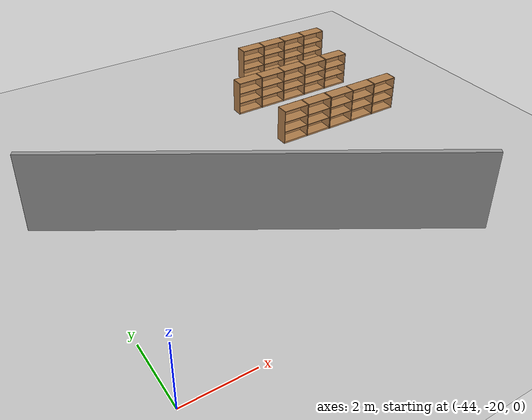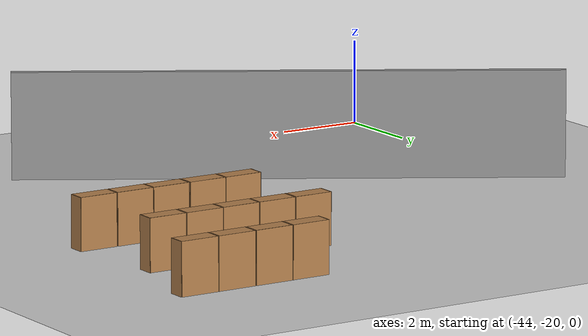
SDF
<sdf version="1.6">
 <world name="default">
  <model name="ground_plane">
   <static>1</static>
   <link name="link">
    <collision name="collision">
     <geometry><plane><normal>0 0 1</normal><size>100 100</size></plane></geometry>
     <surface><friction><ode><mu>100</mu><mu2>50</mu2></ode></friction></surface>
    </collision>
    <visual name="visual">
     <cast_shadows>0</cast_shadows>
     <geometry><plane><normal>0 0 1</normal><size>100 100</size></plane></geometry>
     <material>
      <script><uri>file://media/materials/scripts/gazebo.material</uri><name>Gazebo/Grey</name></script>
     </material>
    </visual>
   </link>
  </model>
  <model name="mall_new_reduce_size">
   <pose>-6.8092 7.5529 0 0 -0 0</pose>
   <link name="Wall_314">
    <collision name="Wall_314_Collision">
     <geometry><box><size>12.6291 0.15 2.5</size></box></geometry>
     <pose>0 0 1.25 0 -0 0</pose>
    </collision>
    <visual name="Wall_314_Visual">
     <pose>0 0 1.25 0 -0 0</pose>
     <geometry><box><size>12.6291 0.15 2.5</size></box></geometry>
     <material>
      <script><uri>file://media/materials/scripts/gazebo.material</uri><name>Gazebo/Grey</name></script>
      <ambient>1 1 1 1</ambient>
     </material>
     <meta><layer>0</layer></meta>
    </visual>
    <pose>-32.6669 -23.463 0 0 -0 2.5911</pose>
   </link>
   <static>1</static>
  </model>
  <model name="bookshelf">
   <static>1</static>
   <link name="link">
    <inertial><mass>1</mass></inertial>
    <collision name="back">
     <pose>0 0.005 0.6 0 -0 0</pose>
     <geometry><box><size>0.9 0.01 1.2</size></box></geometry>
    </collision>
    <visual name="visual1">
     <pose>0 0.005 0.6 0 -0 0</pose>
     <geometry><box><size>0.9 0.01 1.2</size></box></geometry>
     <material>
      <script><uri>file://media/materials/scripts/gazebo.material</uri><name>Gazebo/Wood</name></script>
     </material>
    </visual>
    <collision name="left_side">
     <pose>0.45 -0.195 0.6 0 -0 0</pose>
     <geometry><box><size>0.02 0.4 1.2</size></box></geometry>
    </collision>
    <visual name="visual2">
     <pose>0.45 -0.195 0.6 0 -0 0</pose>
     <geometry><box><size>0.02 0.4 1.2</size></box></geometry>
     <material>
      <script><uri>file://media/materials/scripts/gazebo.material</uri><name>Gazebo/Wood</name></script>
     </material>
    </visual>
    <collision name="right_side">
     <pose>-0.45 -0.195 0.6 0 -0 0</pose>
     <geometry><box><size>0.02 0.4 1.2</size></box></geometry>
    </collision>
    <visual name="visual3">
     <pose>-0.45 -0.195 0.6 0 -0 0</pose>
     <geometry><box><size>0.02 0.4 1.2</size></box></geometry>
     <material>
      <script><uri>file://media/materials/scripts/gazebo.material</uri><name>Gazebo/Wood</name></script>
     </material>
    </visual>
    <collision name="bottom">
     <pose>0 -0.195 0.03 0 -0 0</pose>
     <geometry><box><size>0.88 0.4 0.06</size></box></geometry>
    </collision>
    <visual name="visual4">
     <pose>0 -0.195 0.03 0 -0 0</pose>
     <geometry><box><size>0.88 0.4 0.06</size></box></geometry>
     <material>
      <script><uri>file://media/materials/scripts/gazebo.material</uri><name>Gazebo/Wood</name></script>
     </material>
    </visual>
    <collision name="top">
     <pose>0 -0.195 1.19 0 -0 0</pose>
     <geometry><box><size>0.88 0.4 0.02</size></box></geometry>
    </collision>
    <visual name="visual5">
     <pose>0 -0.195 1.19 0 -0 0</pose>
     <geometry><box><size>0.88 0.4 0.02</size></box></geometry>
     <material>
      <script><uri>file://media/materials/scripts/gazebo.material</uri><name>Gazebo/Wood</name></script>
     </material>
    </visual>
    <collision name="low_shelf">
     <pose>0 -0.195 0.43 0 -0 0</pose>
     <geometry><box><size>0.88 0.4 0.02</size></box></geometry>
    </collision>
    <visual name="visual6">
     <pose>0 -0.195 0.43 0 -0 0</pose>
     <geometry><box><size>0.88 0.4 0.02</size></box></geometry>
     <material>
      <script><uri>file://media/materials/scripts/gazebo.material</uri><name>Gazebo/Wood</name></script>
     </material>
    </visual>
    <collision name="high_shelf">
     <pose>0 -0.195 0.8 0 -0 0</pose>
     <geometry><box><size>0.88 0.4 0.02</size></box></geometry>
    </collision>
    <visual name="visual7">
     <pose>0 -0.195 0.8 0 -0 0</pose>
     <geometry><box><size>0.88 0.4 0.02</size></box></geometry>
     <material>
      <script><uri>file://media/materials/scripts/gazebo.material</uri><name>Gazebo/Wood</name></script>
     </material>
    </visual>
   </link>
   <pose>-33.7996 -7.69307 0 0 -0 0</pose>
  </model>
  <model name="bookshelf_0">
   <static>1</static>
   <link name="link">
    <inertial><mass>1</mass></inertial>
    <collision name="back">
     <pose>0 0.005 0.6 0 -0 0</pose>
     <geometry><box><size>0.9 0.01 1.2</size></box></geometry>
    </collision>
    <visual name="visual1">
     <pose>0 0.005 0.6 0 -0 0</pose>
     <geometry><box><size>0.9 0.01 1.2</size></box></geometry>
     <material>
      <script><uri>file://media/materials/scripts/gazebo.material</uri><name>Gazebo/Wood</name></script>
     </material>
    </visual>
    <collision name="left_side">
     <pose>0.45 -0.195 0.6 0 -0 0</pose>
     <geometry><box><size>0.02 0.4 1.2</size></box></geometry>
    </collision>
    <visual name="visual2">
     <pose>0.45 -0.195 0.6 0 -0 0</pose>
     <geometry><box><size>0.02 0.4 1.2</size></box></geometry>
     <material>
      <script><uri>file://media/materials/scripts/gazebo.material</uri><name>Gazebo/Wood</name></script>
     </material>
    </visual>
    <collision name="right_side">
     <pose>-0.45 -0.195 0.6 0 -0 0</pose>
     <geometry><box><size>0.02 0.4 1.2</size></box></geometry>
    </collision>
    <visual name="visual3">
     <pose>-0.45 -0.195 0.6 0 -0 0</pose>
     <geometry><box><size>0.02 0.4 1.2</size></box></geometry>
     <material>
      <script><uri>file://media/materials/scripts/gazebo.material</uri><name>Gazebo/Wood</name></script>
     </material>
    </visual>
    <collision name="bottom">
     <pose>0 -0.195 0.03 0 -0 0</pose>
     <geometry><box><size>0.88 0.4 0.06</size></box></geometry>
    </collision>
    <visual name="visual4">
     <pose>0 -0.195 0.03 0 -0 0</pose>
     <geometry><box><size>0.88 0.4 0.06</size></box></geometry>
     <material>
      <script><uri>file://media/materials/scripts/gazebo.material</uri><name>Gazebo/Wood</name></script>
     </material>
    </visual>
    <collision name="top">
     <pose>0 -0.195 1.19 0 -0 0</pose>
     <geometry><box><size>0.88 0.4 0.02</size></box></geometry>
    </collision>
    <visual name="visual5">
     <pose>0 -0.195 1.19 0 -0 0</pose>
     <geometry><box><size>0.88 0.4 0.02</size></box></geometry>
     <material>
      <script><uri>file://media/materials/scripts/gazebo.material</uri><name>Gazebo/Wood</name></script>
     </material>
    </visual>
    <collision name="low_shelf">
     <pose>0 -0.195 0.43 0 -0 0</pose>
     <geometry><box><size>0.88 0.4 0.02</size></box></geometry>
    </collision>
    <visual name="visual6">
     <pose>0 -0.195 0.43 0 -0 0</pose>
     <geometry><box><size>0.88 0.4 0.02</size></box></geometry>
     <material>
      <script><uri>file://media/materials/scripts/gazebo.material</uri><name>Gazebo/Wood</name></script>
     </material>
    </visual>
    <collision name="high_shelf">
     <pose>0 -0.195 0.8 0 -0 0</pose>
     <geometry><box><size>0.88 0.4 0.02</size></box></geometry>
    </collision>
    <visual name="visual7">
     <pose>0 -0.195 0.8 0 -0 0</pose>
     <geometry><box><size>0.88 0.4 0.02</size></box></geometry>
     <material>
      <script><uri>file://media/materials/scripts/gazebo.material</uri><name>Gazebo/Wood</name></script>
     </material>
    </visual>
   </link>
   <pose>-34.3594 -9.86811 0 0 -0 0</pose>
  </model>
  <model name="bookshelf_1">
   <static>1</static>
   <link name="link">
    <inertial><mass>1</mass></inertial>
    <collision name="back">
     <pose>0 0.005 0.6 0 -0 0</pose>
     <geometry><box><size>0.9 0.01 1.2</size></box></geometry>
    </collision>
    <visual name="visual1">
     <pose>0 0.005 0.6 0 -0 0</pose>
     <geometry><box><size>0.9 0.01 1.2</size></box></geometry>
     <material>
      <script><uri>file://media/materials/scripts/gazebo.material</uri><name>Gazebo/Wood</name></script>
     </material>
    </visual>
    <collision name="left_side">
     <pose>0.45 -0.195 0.6 0 -0 0</pose>
     <geometry><box><size>0.02 0.4 1.2</size></box></geometry>
    </collision>
    <visual name="visual2">
     <pose>0.45 -0.195 0.6 0 -0 0</pose>
     <geometry><box><size>0.02 0.4 1.2</size></box></geometry>
     <material>
      <script><uri>file://media/materials/scripts/gazebo.material</uri><name>Gazebo/Wood</name></script>
     </material>
    </visual>
    <collision name="right_side">
     <pose>-0.45 -0.195 0.6 0 -0 0</pose>
     <geometry><box><size>0.02 0.4 1.2</size></box></geometry>
    </collision>
    <visual name="visual3">
     <pose>-0.45 -0.195 0.6 0 -0 0</pose>
     <geometry><box><size>0.02 0.4 1.2</size></box></geometry>
     <material>
      <script><uri>file://media/materials/scripts/gazebo.material</uri><name>Gazebo/Wood</name></script>
     </material>
    </visual>
    <collision name="bottom">
     <pose>0 -0.195 0.03 0 -0 0</pose>
     <geometry><box><size>0.88 0.4 0.06</size></box></geometry>
    </collision>
    <visual name="visual4">
     <pose>0 -0.195 0.03 0 -0 0</pose>
     <geometry><box><size>0.88 0.4 0.06</size></box></geometry>
     <material>
      <script><uri>file://media/materials/scripts/gazebo.material</uri><name>Gazebo/Wood</name></script>
     </material>
    </visual>
    <collision name="top">
     <pose>0 -0.195 1.19 0 -0 0</pose>
     <geometry><box><size>0.88 0.4 0.02</size></box></geometry>
    </collision>
    <visual name="visual5">
     <pose>0 -0.195 1.19 0 -0 0</pose>
     <geometry><box><size>0.88 0.4 0.02</size></box></geometry>
     <material>
      <script><uri>file://media/materials/scripts/gazebo.material</uri><name>Gazebo/Wood</name></script>
     </material>
    </visual>
    <collision name="low_shelf">
     <pose>0 -0.195 0.43 0 -0 0</pose>
     <geometry><box><size>0.88 0.4 0.02</size></box></geometry>
    </collision>
    <visual name="visual6">
     <pose>0 -0.195 0.43 0 -0 0</pose>
     <geometry><box><size>0.88 0.4 0.02</size></box></geometry>
     <material>
      <script><uri>file://media/materials/scripts/gazebo.material</uri><name>Gazebo/Wood</name></script>
     </material>
    </visual>
    <collision name="high_shelf">
     <pose>0 -0.195 0.8 0 -0 0</pose>
     <geometry><box><size>0.88 0.4 0.02</size></box></geometry>
    </collision>
    <visual name="visual7">
     <pose>0 -0.195 0.8 0 -0 0</pose>
     <geometry><box><size>0.88 0.4 0.02</size></box></geometry>
     <material>
      <script><uri>file://media/materials/scripts/gazebo.material</uri><name>Gazebo/Wood</name></script>
     </material>
    </visual>
   </link>
   <pose>-31.9528 -7.69334 0 0 -0 0</pose>
  </model>
  <model name="bookshelf_3">
   <static>1</static>
   <link name="link">
    <inertial><mass>1</mass></inertial>
    <collision name="back">
     <pose>0 0.005 0.6 0 -0 0</pose>
     <geometry><box><size>0.9 0.01 1.2</size></box></geometry>
    </collision>
    <visual name="visual1">
     <pose>0 0.005 0.6 0 -0 0</pose>
     <geometry><box><size>0.9 0.01 1.2</size></box></geometry>
     <material>
      <script><uri>file://media/materials/scripts/gazebo.material</uri><name>Gazebo/Wood</name></script>
     </material>
    </visual>
    <collision name="left_side">
     <pose>0.45 -0.195 0.6 0 -0 0</pose>
     <geometry><box><size>0.02 0.4 1.2</size></box></geometry>
    </collision>
    <visual name="visual2">
     <pose>0.45 -0.195 0.6 0 -0 0</pose>
     <geometry><box><size>0.02 0.4 1.2</size></box></geometry>
     <material>
      <script><uri>file://media/materials/scripts/gazebo.material</uri><name>Gazebo/Wood</name></script>
     </material>
    </visual>
    <collision name="right_side">
     <pose>-0.45 -0.195 0.6 0 -0 0</pose>
     <geometry><box><size>0.02 0.4 1.2</size></box></geometry>
    </collision>
    <visual name="visual3">
     <pose>-0.45 -0.195 0.6 0 -0 0</pose>
     <geometry><box><size>0.02 0.4 1.2</size></box></geometry>
     <material>
      <script><uri>file://media/materials/scripts/gazebo.material</uri><name>Gazebo/Wood</name></script>
     </material>
    </visual>
    <collision name="bottom">
     <pose>0 -0.195 0.03 0 -0 0</pose>
     <geometry><box><size>0.88 0.4 0.06</size></box></geometry>
    </collision>
    <visual name="visual4">
     <pose>0 -0.195 0.03 0 -0 0</pose>
     <geometry><box><size>0.88 0.4 0.06</size></box></geometry>
     <material>
      <script><uri>file://media/materials/scripts/gazebo.material</uri><name>Gazebo/Wood</name></script>
     </material>
    </visual>
    <collision name="top">
     <pose>0 -0.195 1.19 0 -0 0</pose>
     <geometry><box><size>0.88 0.4 0.02</size></box></geometry>
    </collision>
    <visual name="visual5">
     <pose>0 -0.195 1.19 0 -0 0</pose>
     <geometry><box><size>0.88 0.4 0.02</size></box></geometry>
     <material>
      <script><uri>file://media/materials/scripts/gazebo.material</uri><name>Gazebo/Wood</name></script>
     </material>
    </visual>
    <collision name="low_shelf">
     <pose>0 -0.195 0.43 0 -0 0</pose>
     <geometry><box><size>0.88 0.4 0.02</size></box></geometry>
    </collision>
    <visual name="visual6">
     <pose>0 -0.195 0.43 0 -0 0</pose>
     <geometry><box><size>0.88 0.4 0.02</size></box></geometry>
     <material>
      <script><uri>file://media/materials/scripts/gazebo.material</uri><name>Gazebo/Wood</name></script>
     </material>
    </visual>
    <collision name="high_shelf">
     <pose>0 -0.195 0.8 0 -0 0</pose>
     <geometry><box><size>0.88 0.4 0.02</size></box></geometry>
    </collision>
    <visual name="visual7">
     <pose>0 -0.195 0.8 0 -0 0</pose>
     <geometry><box><size>0.88 0.4 0.02</size></box></geometry>
     <material>
      <script><uri>file://media/materials/scripts/gazebo.material</uri><name>Gazebo/Wood</name></script>
     </material>
    </visual>
   </link>
   <pose>-33.4363 -9.8649 0 0 -0 0</pose>
  </model>
  <model name="bookshelf_4">
   <static>1</static>
   <link name="link">
    <inertial><mass>1</mass></inertial>
    <collision name="back">
     <pose>0 0.005 0.6 0 -0 0</pose>
     <geometry><box><size>0.9 0.01 1.2</size></box></geometry>
    </collision>
    <visual name="visual1">
     <pose>0 0.005 0.6 0 -0 0</pose>
     <geometry><box><size>0.9 0.01 1.2</size></box></geometry>
     <material>
      <script><uri>file://media/materials/scripts/gazebo.material</uri><name>Gazebo/Wood</name></script>
     </material>
    </visual>
    <collision name="left_side">
     <pose>0.45 -0.195 0.6 0 -0 0</pose>
     <geometry><box><size>0.02 0.4 1.2</size></box></geometry>
    </collision>
    <visual name="visual2">
     <pose>0.45 -0.195 0.6 0 -0 0</pose>
     <geometry><box><size>0.02 0.4 1.2</size></box></geometry>
     <material>
      <script><uri>file://media/materials/scripts/gazebo.material</uri><name>Gazebo/Wood</name></script>
     </material>
    </visual>
    <collision name="right_side">
     <pose>-0.45 -0.195 0.6 0 -0 0</pose>
     <geometry><box><size>0.02 0.4 1.2</size></box></geometry>
    </collision>
    <visual name="visual3">
     <pose>-0.45 -0.195 0.6 0 -0 0</pose>
     <geometry><box><size>0.02 0.4 1.2</size></box></geometry>
     <material>
      <script><uri>file://media/materials/scripts/gazebo.material</uri><name>Gazebo/Wood</name></script>
     </material>
    </visual>
    <collision name="bottom">
     <pose>0 -0.195 0.03 0 -0 0</pose>
     <geometry><box><size>0.88 0.4 0.06</size></box></geometry>
    </collision>
    <visual name="visual4">
     <pose>0 -0.195 0.03 0 -0 0</pose>
     <geometry><box><size>0.88 0.4 0.06</size></box></geometry>
     <material>
      <script><uri>file://media/materials/scripts/gazebo.material</uri><name>Gazebo/Wood</name></script>
     </material>
    </visual>
    <collision name="top">
     <pose>0 -0.195 1.19 0 -0 0</pose>
     <geometry><box><size>0.88 0.4 0.02</size></box></geometry>
    </collision>
    <visual name="visual5">
     <pose>0 -0.195 1.19 0 -0 0</pose>
     <geometry><box><size>0.88 0.4 0.02</size></box></geometry>
     <material>
      <script><uri>file://media/materials/scripts/gazebo.material</uri><name>Gazebo/Wood</name></script>
     </material>
    </visual>
    <collision name="low_shelf">
     <pose>0 -0.195 0.43 0 -0 0</pose>
     <geometry><box><size>0.88 0.4 0.02</size></box></geometry>
    </collision>
    <visual name="visual6">
     <pose>0 -0.195 0.43 0 -0 0</pose>
     <geometry><box><size>0.88 0.4 0.02</size></box></geometry>
     <material>
      <script><uri>file://media/materials/scripts/gazebo.material</uri><name>Gazebo/Wood</name></script>
     </material>
    </visual>
    <collision name="high_shelf">
     <pose>0 -0.195 0.8 0 -0 0</pose>
     <geometry><box><size>0.88 0.4 0.02</size></box></geometry>
    </collision>
    <visual name="visual7">
     <pose>0 -0.195 0.8 0 -0 0</pose>
     <geometry><box><size>0.88 0.4 0.02</size></box></geometry>
     <material>
      <script><uri>file://media/materials/scripts/gazebo.material</uri><name>Gazebo/Wood</name></script>
     </material>
    </visual>
   </link>
   <pose>-32.5123 -9.8649 0 0 -0 0</pose>
  </model>
  <model name="bookshelf_5">
   <static>1</static>
   <link name="link">
    <inertial><mass>1</mass></inertial>
    <collision name="back">
     <pose>0 0.005 0.6 0 -0 0</pose>
     <geometry><box><size>0.9 0.01 1.2</size></box></geometry>
    </collision>
    <visual name="visual1">
     <pose>0 0.005 0.6 0 -0 0</pose>
     <geometry><box><size>0.9 0.01 1.2</size></box></geometry>
     <material>
      <script><uri>file://media/materials/scripts/gazebo.material</uri><name>Gazebo/Wood</name></script>
     </material>
    </visual>
    <collision name="left_side">
     <pose>0.45 -0.195 0.6 0 -0 0</pose>
     <geometry><box><size>0.02 0.4 1.2</size></box></geometry>
    </collision>
    <visual name="visual2">
     <pose>0.45 -0.195 0.6 0 -0 0</pose>
     <geometry><box><size>0.02 0.4 1.2</size></box></geometry>
     <material>
      <script><uri>file://media/materials/scripts/gazebo.material</uri><name>Gazebo/Wood</name></script>
     </material>
    </visual>
    <collision name="right_side">
     <pose>-0.45 -0.195 0.6 0 -0 0</pose>
     <geometry><box><size>0.02 0.4 1.2</size></box></geometry>
    </collision>
    <visual name="visual3">
     <pose>-0.45 -0.195 0.6 0 -0 0</pose>
     <geometry><box><size>0.02 0.4 1.2</size></box></geometry>
     <material>
      <script><uri>file://media/materials/scripts/gazebo.material</uri><name>Gazebo/Wood</name></script>
     </material>
    </visual>
    <collision name="bottom">
     <pose>0 -0.195 0.03 0 -0 0</pose>
     <geometry><box><size>0.88 0.4 0.06</size></box></geometry>
    </collision>
    <visual name="visual4">
     <pose>0 -0.195 0.03 0 -0 0</pose>
     <geometry><box><size>0.88 0.4 0.06</size></box></geometry>
     <material>
      <script><uri>file://media/materials/scripts/gazebo.material</uri><name>Gazebo/Wood</name></script>
     </material>
    </visual>
    <collision name="top">
     <pose>0 -0.195 1.19 0 -0 0</pose>
     <geometry><box><size>0.88 0.4 0.02</size></box></geometry>
    </collision>
    <visual name="visual5">
     <pose>0 -0.195 1.19 0 -0 0</pose>
     <geometry><box><size>0.88 0.4 0.02</size></box></geometry>
     <material>
      <script><uri>file://media/materials/scripts/gazebo.material</uri><name>Gazebo/Wood</name></script>
     </material>
    </visual>
    <collision name="low_shelf">
     <pose>0 -0.195 0.43 0 -0 0</pose>
     <geometry><box><size>0.88 0.4 0.02</size></box></geometry>
    </collision>
    <visual name="visual6">
     <pose>0 -0.195 0.43 0 -0 0</pose>
     <geometry><box><size>0.88 0.4 0.02</size></box></geometry>
     <material>
      <script><uri>file://media/materials/scripts/gazebo.material</uri><name>Gazebo/Wood</name></script>
     </material>
    </visual>
    <collision name="high_shelf">
     <pose>0 -0.195 0.8 0 -0 0</pose>
     <geometry><box><size>0.88 0.4 0.02</size></box></geometry>
    </collision>
    <visual name="visual7">
     <pose>0 -0.195 0.8 0 -0 0</pose>
     <geometry><box><size>0.88 0.4 0.02</size></box></geometry>
     <material>
      <script><uri>file://media/materials/scripts/gazebo.material</uri><name>Gazebo/Wood</name></script>
     </material>
    </visual>
   </link>
   <pose>-35.2792 -9.86761 0 0 -0 0</pose>
  </model>
  <model name="bookshelf_12">
   <static>1</static>
   <link name="link">
    <inertial><mass>1</mass></inertial>
    <collision name="back">
     <pose>0 0.005 0.6 0 -0 0</pose>
     <geometry><box><size>0.9 0.01 1.2</size></box></geometry>
    </collision>
    <visual name="visual1">
     <pose>0 0.005 0.6 0 -0 0</pose>
     <geometry><box><size>0.9 0.01 1.2</size></box></geometry>
     <material>
      <script><uri>file://media/materials/scripts/gazebo.material</uri><name>Gazebo/Wood</name></script>
     </material>
    </visual>
    <collision name="left_side">
     <pose>0.45 -0.195 0.6 0 -0 0</pose>
     <geometry><box><size>0.02 0.4 1.2</size></box></geometry>
    </collision>
    <visual name="visual2">
     <pose>0.45 -0.195 0.6 0 -0 0</pose>
     <geometry><box><size>0.02 0.4 1.2</size></box></geometry>
     <material>
      <script><uri>file://media/materials/scripts/gazebo.material</uri><name>Gazebo/Wood</name></script>
     </material>
    </visual>
    <collision name="right_side">
     <pose>-0.45 -0.195 0.6 0 -0 0</pose>
     <geometry><box><size>0.02 0.4 1.2</size></box></geometry>
    </collision>
    <visual name="visual3">
     <pose>-0.45 -0.195 0.6 0 -0 0</pose>
     <geometry><box><size>0.02 0.4 1.2</size></box></geometry>
     <material>
      <script><uri>file://media/materials/scripts/gazebo.material</uri><name>Gazebo/Wood</name></script>
     </material>
    </visual>
    <collision name="bottom">
     <pose>0 -0.195 0.03 0 -0 0</pose>
     <geometry><box><size>0.88 0.4 0.06</size></box></geometry>
    </collision>
    <visual name="visual4">
     <pose>0 -0.195 0.03 0 -0 0</pose>
     <geometry><box><size>0.88 0.4 0.06</size></box></geometry>
     <material>
      <script><uri>file://media/materials/scripts/gazebo.material</uri><name>Gazebo/Wood</name></script>
     </material>
    </visual>
    <collision name="top">
     <pose>0 -0.195 1.19 0 -0 0</pose>
     <geometry><box><size>0.88 0.4 0.02</size></box></geometry>
    </collision>
    <visual name="visual5">
     <pose>0 -0.195 1.19 0 -0 0</pose>
     <geometry><box><size>0.88 0.4 0.02</size></box></geometry>
     <material>
      <script><uri>file://media/materials/scripts/gazebo.material</uri><name>Gazebo/Wood</name></script>
     </material>
    </visual>
    <collision name="low_shelf">
     <pose>0 -0.195 0.43 0 -0 0</pose>
     <geometry><box><size>0.88 0.4 0.02</size></box></geometry>
    </collision>
    <visual name="visual6">
     <pose>0 -0.195 0.43 0 -0 0</pose>
     <geometry><box><size>0.88 0.4 0.02</size></box></geometry>
     <material>
      <script><uri>file://media/materials/scripts/gazebo.material</uri><name>Gazebo/Wood</name></script>
     </material>
    </visual>
    <collision name="high_shelf">
     <pose>0 -0.195 0.8 0 -0 0</pose>
     <geometry><box><size>0.88 0.4 0.02</size></box></geometry>
    </collision>
    <visual name="visual7">
     <pose>0 -0.195 0.8 0 -0 0</pose>
     <geometry><box><size>0.88 0.4 0.02</size></box></geometry>
     <material>
      <script><uri>file://media/materials/scripts/gazebo.material</uri><name>Gazebo/Wood</name></script>
     </material>
    </visual>
   </link>
   <pose>-34.7239 -7.69355 0 0 -0 0</pose>
  </model>
  <model name="bookshelf_13">
   <static>1</static>
   <link name="link">
    <inertial><mass>1</mass></inertial>
    <collision name="back">
     <pose>0 0.005 0.6 0 -0 0</pose>
     <geometry><box><size>0.9 0.01 1.2</size></box></geometry>
    </collision>
    <visual name="visual1">
     <pose>0 0.005 0.6 0 -0 0</pose>
     <geometry><box><size>0.9 0.01 1.2</size></box></geometry>
     <material>
      <script><uri>file://media/materials/scripts/gazebo.material</uri><name>Gazebo/Wood</name></script>
     </material>
    </visual>
    <collision name="left_side">
     <pose>0.45 -0.195 0.6 0 -0 0</pose>
     <geometry><box><size>0.02 0.4 1.2</size></box></geometry>
    </collision>
    <visual name="visual2">
     <pose>0.45 -0.195 0.6 0 -0 0</pose>
     <geometry><box><size>0.02 0.4 1.2</size></box></geometry>
     <material>
      <script><uri>file://media/materials/scripts/gazebo.material</uri><name>Gazebo/Wood</name></script>
     </material>
    </visual>
    <collision name="right_side">
     <pose>-0.45 -0.195 0.6 0 -0 0</pose>
     <geometry><box><size>0.02 0.4 1.2</size></box></geometry>
    </collision>
    <visual name="visual3">
     <pose>-0.45 -0.195 0.6 0 -0 0</pose>
     <geometry><box><size>0.02 0.4 1.2</size></box></geometry>
     <material>
      <script><uri>file://media/materials/scripts/gazebo.material</uri><name>Gazebo/Wood</name></script>
     </material>
    </visual>
    <collision name="bottom">
     <pose>0 -0.195 0.03 0 -0 0</pose>
     <geometry><box><size>0.88 0.4 0.06</size></box></geometry>
    </collision>
    <visual name="visual4">
     <pose>0 -0.195 0.03 0 -0 0</pose>
     <geometry><box><size>0.88 0.4 0.06</size></box></geometry>
     <material>
      <script><uri>file://media/materials/scripts/gazebo.material</uri><name>Gazebo/Wood</name></script>
     </material>
    </visual>
    <collision name="top">
     <pose>0 -0.195 1.19 0 -0 0</pose>
     <geometry><box><size>0.88 0.4 0.02</size></box></geometry>
    </collision>
    <visual name="visual5">
     <pose>0 -0.195 1.19 0 -0 0</pose>
     <geometry><box><size>0.88 0.4 0.02</size></box></geometry>
     <material>
      <script><uri>file://media/materials/scripts/gazebo.material</uri><name>Gazebo/Wood</name></script>
     </material>
    </visual>
    <collision name="low_shelf">
     <pose>0 -0.195 0.43 0 -0 0</pose>
     <geometry><box><size>0.88 0.4 0.02</size></box></geometry>
    </collision>
    <visual name="visual6">
     <pose>0 -0.195 0.43 0 -0 0</pose>
     <geometry><box><size>0.88 0.4 0.02</size></box></geometry>
     <material>
      <script><uri>file://media/materials/scripts/gazebo.material</uri><name>Gazebo/Wood</name></script>
     </material>
    </visual>
    <collision name="high_shelf">
     <pose>0 -0.195 0.8 0 -0 0</pose>
     <geometry><box><size>0.88 0.4 0.02</size></box></geometry>
    </collision>
    <visual name="visual7">
     <pose>0 -0.195 0.8 0 -0 0</pose>
     <geometry><box><size>0.88 0.4 0.02</size></box></geometry>
     <material>
      <script><uri>file://media/materials/scripts/gazebo.material</uri><name>Gazebo/Wood</name></script>
     </material>
    </visual>
   </link>
   <pose>-32.8758 -7.69413 0 0 -0 0</pose>
  </model>
  <model name="bookshelf_29">
   <static>1</static>
   <link name="link">
    <inertial><mass>1</mass></inertial>
    <collision name="back">
     <pose>0 0.005 0.6 0 -0 0</pose>
     <geometry><box><size>0.9 0.01 1.2</size></box></geometry>
    </collision>
    <visual name="visual1">
     <pose>0 0.005 0.6 0 -0 0</pose>
     <geometry><box><size>0.9 0.01 1.2</size></box></geometry>
     <material>
      <script><uri>file://media/materials/scripts/gazebo.material</uri><name>Gazebo/Wood</name></script>
     </material>
    </visual>
    <collision name="left_side">
     <pose>0.45 -0.195 0.6 0 -0 0</pose>
     <geometry><box><size>0.02 0.4 1.2</size></box></geometry>
    </collision>
    <visual name="visual2">
     <pose>0.45 -0.195 0.6 0 -0 0</pose>
     <geometry><box><size>0.02 0.4 1.2</size></box></geometry>
     <material>
      <script><uri>file://media/materials/scripts/gazebo.material</uri><name>Gazebo/Wood</name></script>
     </material>
    </visual>
    <collision name="right_side">
     <pose>-0.45 -0.195 0.6 0 -0 0</pose>
     <geometry><box><size>0.02 0.4 1.2</size></box></geometry>
    </collision>
    <visual name="visual3">
     <pose>-0.45 -0.195 0.6 0 -0 0</pose>
     <geometry><box><size>0.02 0.4 1.2</size></box></geometry>
     <material>
      <script><uri>file://media/materials/scripts/gazebo.material</uri><name>Gazebo/Wood</name></script>
     </material>
    </visual>
    <collision name="bottom">
     <pose>0 -0.195 0.03 0 -0 0</pose>
     <geometry><box><size>0.88 0.4 0.06</size></box></geometry>
    </collision>
    <visual name="visual4">
     <pose>0 -0.195 0.03 0 -0 0</pose>
     <geometry><box><size>0.88 0.4 0.06</size></box></geometry>
     <material>
      <script><uri>file://media/materials/scripts/gazebo.material</uri><name>Gazebo/Wood</name></script>
     </material>
    </visual>
    <collision name="top">
     <pose>0 -0.195 1.19 0 -0 0</pose>
     <geometry><box><size>0.88 0.4 0.02</size></box></geometry>
    </collision>
    <visual name="visual5">
     <pose>0 -0.195 1.19 0 -0 0</pose>
     <geometry><box><size>0.88 0.4 0.02</size></box></geometry>
     <material>
      <script><uri>file://media/materials/scripts/gazebo.material</uri><name>Gazebo/Wood</name></script>
     </material>
    </visual>
    <collision name="low_shelf">
     <pose>0 -0.195 0.43 0 -0 0</pose>
     <geometry><box><size>0.88 0.4 0.02</size></box></geometry>
    </collision>
    <visual name="visual6">
     <pose>0 -0.195 0.43 0 -0 0</pose>
     <geometry><box><size>0.88 0.4 0.02</size></box></geometry>
     <material>
      <script><uri>file://media/materials/scripts/gazebo.material</uri><name>Gazebo/Wood</name></script>
     </material>
    </visual>
    <collision name="high_shelf">
     <pose>0 -0.195 0.8 0 -0 0</pose>
     <geometry><box><size>0.88 0.4 0.02</size></box></geometry>
    </collision>
    <visual name="visual7">
     <pose>0 -0.195 0.8 0 -0 0</pose>
     <geometry><box><size>0.88 0.4 0.02</size></box></geometry>
     <material>
      <script><uri>file://media/materials/scripts/gazebo.material</uri><name>Gazebo/Wood</name></script>
     </material>
    </visual>
   </link>
   <pose>-35.0345 -12.2992 0 0 -0 0</pose>
  </model>
  <model name="bookshelf_30">
   <static>1</static>
   <link name="link">
    <inertial><mass>1</mass></inertial>
    <collision name="back">
     <pose>0 0.005 0.6 0 -0 0</pose>
     <geometry><box><size>0.9 0.01 1.2</size></box></geometry>
    </collision>
    <visual name="visual1">
     <pose>0 0.005 0.6 0 -0 0</pose>
     <geometry><box><size>0.9 0.01 1.2</size></box></geometry>
     <material>
      <script><uri>file://media/materials/scripts/gazebo.material</uri><name>Gazebo/Wood</name></script>
     </material>
    </visual>
    <collision name="left_side">
     <pose>0.45 -0.195 0.6 0 -0 0</pose>
     <geometry><box><size>0.02 0.4 1.2</size></box></geometry>
    </collision>
    <visual name="visual2">
     <pose>0.45 -0.195 0.6 0 -0 0</pose>
     <geometry><box><size>0.02 0.4 1.2</size></box></geometry>
     <material>
      <script><uri>file://media/materials/scripts/gazebo.material</uri><name>Gazebo/Wood</name></script>
     </material>
    </visual>
    <collision name="right_side">
     <pose>-0.45 -0.195 0.6 0 -0 0</pose>
     <geometry><box><size>0.02 0.4 1.2</size></box></geometry>
    </collision>
    <visual name="visual3">
     <pose>-0.45 -0.195 0.6 0 -0 0</pose>
     <geometry><box><size>0.02 0.4 1.2</size></box></geometry>
     <material>
      <script><uri>file://media/materials/scripts/gazebo.material</uri><name>Gazebo/Wood</name></script>
     </material>
    </visual>
    <collision name="bottom">
     <pose>0 -0.195 0.03 0 -0 0</pose>
     <geometry><box><size>0.88 0.4 0.06</size></box></geometry>
    </collision>
    <visual name="visual4">
     <pose>0 -0.195 0.03 0 -0 0</pose>
     <geometry><box><size>0.88 0.4 0.06</size></box></geometry>
     <material>
      <script><uri>file://media/materials/scripts/gazebo.material</uri><name>Gazebo/Wood</name></script>
     </material>
    </visual>
    <collision name="top">
     <pose>0 -0.195 1.19 0 -0 0</pose>
     <geometry><box><size>0.88 0.4 0.02</size></box></geometry>
    </collision>
    <visual name="visual5">
     <pose>0 -0.195 1.19 0 -0 0</pose>
     <geometry><box><size>0.88 0.4 0.02</size></box></geometry>
     <material>
      <script><uri>file://media/materials/scripts/gazebo.material</uri><name>Gazebo/Wood</name></script>
     </material>
    </visual>
    <collision name="low_shelf">
     <pose>0 -0.195 0.43 0 -0 0</pose>
     <geometry><box><size>0.88 0.4 0.02</size></box></geometry>
    </collision>
    <visual name="visual6">
     <pose>0 -0.195 0.43 0 -0 0</pose>
     <geometry><box><size>0.88 0.4 0.02</size></box></geometry>
     <material>
      <script><uri>file://media/materials/scripts/gazebo.material</uri><name>Gazebo/Wood</name></script>
     </material>
    </visual>
    <collision name="high_shelf">
     <pose>0 -0.195 0.8 0 -0 0</pose>
     <geometry><box><size>0.88 0.4 0.02</size></box></geometry>
    </collision>
    <visual name="visual7">
     <pose>0 -0.195 0.8 0 -0 0</pose>
     <geometry><box><size>0.88 0.4 0.02</size></box></geometry>
     <material>
      <script><uri>file://media/materials/scripts/gazebo.material</uri><name>Gazebo/Wood</name></script>
     </material>
    </visual>
   </link>
   <pose>-34.1052 -12.3089 0 0 -0 0</pose>
  </model>
  <model name="bookshelf_31">
   <static>1</static>
   <link name="link">
    <inertial><mass>1</mass></inertial>
    <collision name="back">
     <pose>0 0.005 0.6 0 -0 0</pose>
     <geometry><box><size>0.9 0.01 1.2</size></box></geometry>
    </collision>
    <visual name="visual1">
     <pose>0 0.005 0.6 0 -0 0</pose>
     <geometry><box><size>0.9 0.01 1.2</size></box></geometry>
     <material>
      <script><uri>file://media/materials/scripts/gazebo.material</uri><name>Gazebo/Wood</name></script>
     </material>
    </visual>
    <collision name="left_side">
     <pose>0.45 -0.195 0.6 0 -0 0</pose>
     <geometry><box><size>0.02 0.4 1.2</size></box></geometry>
    </collision>
    <visual name="visual2">
     <pose>0.45 -0.195 0.6 0 -0 0</pose>
     <geometry><box><size>0.02 0.4 1.2</size></box></geometry>
     <material>
      <script><uri>file://media/materials/scripts/gazebo.material</uri><name>Gazebo/Wood</name></script>
     </material>
    </visual>
    <collision name="right_side">
     <pose>-0.45 -0.195 0.6 0 -0 0</pose>
     <geometry><box><size>0.02 0.4 1.2</size></box></geometry>
    </collision>
    <visual name="visual3">
     <pose>-0.45 -0.195 0.6 0 -0 0</pose>
     <geometry><box><size>0.02 0.4 1.2</size></box></geometry>
     <material>
      <script><uri>file://media/materials/scripts/gazebo.material</uri><name>Gazebo/Wood</name></script>
     </material>
    </visual>
    <collision name="bottom">
     <pose>0 -0.195 0.03 0 -0 0</pose>
     <geometry><box><size>0.88 0.4 0.06</size></box></geometry>
    </collision>
    <visual name="visual4">
     <pose>0 -0.195 0.03 0 -0 0</pose>
     <geometry><box><size>0.88 0.4 0.06</size></box></geometry>
     <material>
      <script><uri>file://media/materials/scripts/gazebo.material</uri><name>Gazebo/Wood</name></script>
     </material>
    </visual>
    <collision name="top">
     <pose>0 -0.195 1.19 0 -0 0</pose>
     <geometry><box><size>0.88 0.4 0.02</size></box></geometry>
    </collision>
    <visual name="visual5">
     <pose>0 -0.195 1.19 0 -0 0</pose>
     <geometry><box><size>0.88 0.4 0.02</size></box></geometry>
     <material>
      <script><uri>file://media/materials/scripts/gazebo.material</uri><name>Gazebo/Wood</name></script>
     </material>
    </visual>
    <collision name="low_shelf">
     <pose>0 -0.195 0.43 0 -0 0</pose>
     <geometry><box><size>0.88 0.4 0.02</size></box></geometry>
    </collision>
    <visual name="visual6">
     <pose>0 -0.195 0.43 0 -0 0</pose>
     <geometry><box><size>0.88 0.4 0.02</size></box></geometry>
     <material>
      <script><uri>file://media/materials/scripts/gazebo.material</uri><name>Gazebo/Wood</name></script>
     </material>
    </visual>
    <collision name="high_shelf">
     <pose>0 -0.195 0.8 0 -0 0</pose>
     <geometry><box><size>0.88 0.4 0.02</size></box></geometry>
    </collision>
    <visual name="visual7">
     <pose>0 -0.195 0.8 0 -0 0</pose>
     <geometry><box><size>0.88 0.4 0.02</size></box></geometry>
     <material>
      <script><uri>file://media/materials/scripts/gazebo.material</uri><name>Gazebo/Wood</name></script>
     </material>
    </visual>
   </link>
   <pose>-33.1889 -12.3073 0 0 -0 0</pose>
  </model>
  <model name="bookshelf_32">
   <static>1</static>
   <link name="link">
    <inertial><mass>1</mass></inertial>
    <collision name="back">
     <pose>0 0.005 0.6 0 -0 0</pose>
     <geometry><box><size>0.9 0.01 1.2</size></box></geometry>
    </collision>
    <visual name="visual1">
     <pose>0 0.005 0.6 0 -0 0</pose>
     <geometry><box><size>0.9 0.01 1.2</size></box></geometry>
     <material>
      <script><uri>file://media/materials/scripts/gazebo.material</uri><name>Gazebo/Wood</name></script>
     </material>
    </visual>
    <collision name="left_side">
     <pose>0.45 -0.195 0.6 0 -0 0</pose>
     <geometry><box><size>0.02 0.4 1.2</size></box></geometry>
    </collision>
    <visual name="visual2">
     <pose>0.45 -0.195 0.6 0 -0 0</pose>
     <geometry><box><size>0.02 0.4 1.2</size></box></geometry>
     <material>
      <script><uri>file://media/materials/scripts/gazebo.material</uri><name>Gazebo/Wood</name></script>
     </material>
    </visual>
    <collision name="right_side">
     <pose>-0.45 -0.195 0.6 0 -0 0</pose>
     <geometry><box><size>0.02 0.4 1.2</size></box></geometry>
    </collision>
    <visual name="visual3">
     <pose>-0.45 -0.195 0.6 0 -0 0</pose>
     <geometry><box><size>0.02 0.4 1.2</size></box></geometry>
     <material>
      <script><uri>file://media/materials/scripts/gazebo.material</uri><name>Gazebo/Wood</name></script>
     </material>
    </visual>
    <collision name="bottom">
     <pose>0 -0.195 0.03 0 -0 0</pose>
     <geometry><box><size>0.88 0.4 0.06</size></box></geometry>
    </collision>
    <visual name="visual4">
     <pose>0 -0.195 0.03 0 -0 0</pose>
     <geometry><box><size>0.88 0.4 0.06</size></box></geometry>
     <material>
      <script><uri>file://media/materials/scripts/gazebo.material</uri><name>Gazebo/Wood</name></script>
     </material>
    </visual>
    <collision name="top">
     <pose>0 -0.195 1.19 0 -0 0</pose>
     <geometry><box><size>0.88 0.4 0.02</size></box></geometry>
    </collision>
    <visual name="visual5">
     <pose>0 -0.195 1.19 0 -0 0</pose>
     <geometry><box><size>0.88 0.4 0.02</size></box></geometry>
     <material>
      <script><uri>file://media/materials/scripts/gazebo.material</uri><name>Gazebo/Wood</name></script>
     </material>
    </visual>
    <collision name="low_shelf">
     <pose>0 -0.195 0.43 0 -0 0</pose>
     <geometry><box><size>0.88 0.4 0.02</size></box></geometry>
    </collision>
    <visual name="visual6">
     <pose>0 -0.195 0.43 0 -0 0</pose>
     <geometry><box><size>0.88 0.4 0.02</size></box></geometry>
     <material>
      <script><uri>file://media/materials/scripts/gazebo.material</uri><name>Gazebo/Wood</name></script>
     </material>
    </visual>
    <collision name="high_shelf">
     <pose>0 -0.195 0.8 0 -0 0</pose>
     <geometry><box><size>0.88 0.4 0.02</size></box></geometry>
    </collision>
    <visual name="visual7">
     <pose>0 -0.195 0.8 0 -0 0</pose>
     <geometry><box><size>0.88 0.4 0.02</size></box></geometry>
     <material>
      <script><uri>file://media/materials/scripts/gazebo.material</uri><name>Gazebo/Wood</name></script>
     </material>
    </visual>
   </link>
   <pose>-32.2641 -12.312 0 0 -0 0</pose>
  </model>
  <model name="bookshelf_11">
   <static>1</static>
   <link name="link">
    <inertial><mass>1</mass></inertial>
    <collision name="back">
     <pose>0 0.005 0.6 0 -0 0</pose>
     <geometry><box><size>0.9 0.01 1.2</size></box></geometry>
    </collision>
    <visual name="visual1">
     <pose>0 0.005 0.6 0 -0 0</pose>
     <geometry><box><size>0.9 0.01 1.2</size></box></geometry>
     <material>
      <script><uri>file://media/materials/scripts/gazebo.material</uri><name>Gazebo/Wood</name></script>
     </material>
    </visual>
    <collision name="left_side">
     <pose>0.45 -0.195 0.6 0 -0 0</pose>
     <geometry><box><size>0.02 0.4 1.2</size></box></geometry>
    </collision>
    <visual name="visual2">
     <pose>0.45 -0.195 0.6 0 -0 0</pose>
     <geometry><box><size>0.02 0.4 1.2</size></box></geometry>
     <material>
      <script><uri>file://media/materials/scripts/gazebo.material</uri><name>Gazebo/Wood</name></script>
     </material>
    </visual>
    <collision name="right_side">
     <pose>-0.45 -0.195 0.6 0 -0 0</pose>
     <geometry><box><size>0.02 0.4 1.2</size></box></geometry>
    </collision>
    <visual name="visual3">
     <pose>-0.45 -0.195 0.6 0 -0 0</pose>
     <geometry><box><size>0.02 0.4 1.2</size></box></geometry>
     <material>
      <script><uri>file://media/materials/scripts/gazebo.material</uri><name>Gazebo/Wood</name></script>
     </material>
    </visual>
    <collision name="bottom">
     <pose>0 -0.195 0.03 0 -0 0</pose>
     <geometry><box><size>0.88 0.4 0.06</size></box></geometry>
    </collision>
    <visual name="visual4">
     <pose>0 -0.195 0.03 0 -0 0</pose>
     <geometry><box><size>0.88 0.4 0.06</size></box></geometry>
     <material>
      <script><uri>file://media/materials/scripts/gazebo.material</uri><name>Gazebo/Wood</name></script>
     </material>
    </visual>
    <collision name="top">
     <pose>0 -0.195 1.19 0 -0 0</pose>
     <geometry><box><size>0.88 0.4 0.02</size></box></geometry>
    </collision>
    <visual name="visual5">
     <pose>0 -0.195 1.19 0 -0 0</pose>
     <geometry><box><size>0.88 0.4 0.02</size></box></geometry>
     <material>
      <script><uri>file://media/materials/scripts/gazebo.material</uri><name>Gazebo/Wood</name></script>
     </material>
    </visual>
    <collision name="low_shelf">
     <pose>0 -0.195 0.43 0 -0 0</pose>
     <geometry><box><size>0.88 0.4 0.02</size></box></geometry>
    </collision>
    <visual name="visual6">
     <pose>0 -0.195 0.43 0 -0 0</pose>
     <geometry><box><size>0.88 0.4 0.02</size></box></geometry>
     <material>
      <script><uri>file://media/materials/scripts/gazebo.material</uri><name>Gazebo/Wood</name></script>
     </material>
    </visual>
    <collision name="high_shelf">
     <pose>0 -0.195 0.8 0 -0 0</pose>
     <geometry><box><size>0.88 0.4 0.02</size></box></geometry>
    </collision>
    <visual name="visual7">
     <pose>0 -0.195 0.8 0 -0 0</pose>
     <geometry><box><size>0.88 0.4 0.02</size></box></geometry>
     <material>
      <script><uri>file://media/materials/scripts/gazebo.material</uri><name>Gazebo/Wood</name></script>
     </material>
    </visual>
   </link>
   <pose>-35.9546 -12.2988 0 0 -0 0</pose>
  </model>
  <model name="bookshelf_14">
   <static>1</static>
   <link name="link">
    <inertial><mass>1</mass></inertial>
    <collision name="back">
     <pose>0 0.005 0.6 0 -0 0</pose>
     <geometry><box><size>0.9 0.01 1.2</size></box></geometry>
    </collision>
    <visual name="visual1">
     <pose>0 0.005 0.6 0 -0 0</pose>
     <geometry><box><size>0.9 0.01 1.2</size></box></geometry>
     <material>
      <script><uri>file://media/materials/scripts/gazebo.material</uri><name>Gazebo/Wood</name></script>
     </material>
    </visual>
    <collision name="left_side">
     <pose>0.45 -0.195 0.6 0 -0 0</pose>
     <geometry><box><size>0.02 0.4 1.2</size></box></geometry>
    </collision>
    <visual name="visual2">
     <pose>0.45 -0.195 0.6 0 -0 0</pose>
     <geometry><box><size>0.02 0.4 1.2</size></box></geometry>
     <material>
      <script><uri>file://media/materials/scripts/gazebo.material</uri><name>Gazebo/Wood</name></script>
     </material>
    </visual>
    <collision name="right_side">
     <pose>-0.45 -0.195 0.6 0 -0 0</pose>
     <geometry><box><size>0.02 0.4 1.2</size></box></geometry>
    </collision>
    <visual name="visual3">
     <pose>-0.45 -0.195 0.6 0 -0 0</pose>
     <geometry><box><size>0.02 0.4 1.2</size></box></geometry>
     <material>
      <script><uri>file://media/materials/scripts/gazebo.material</uri><name>Gazebo/Wood</name></script>
     </material>
    </visual>
    <collision name="bottom">
     <pose>0 -0.195 0.03 0 -0 0</pose>
     <geometry><box><size>0.88 0.4 0.06</size></box></geometry>
    </collision>
    <visual name="visual4">
     <pose>0 -0.195 0.03 0 -0 0</pose>
     <geometry><box><size>0.88 0.4 0.06</size></box></geometry>
     <material>
      <script><uri>file://media/materials/scripts/gazebo.material</uri><name>Gazebo/Wood</name></script>
     </material>
    </visual>
    <collision name="top">
     <pose>0 -0.195 1.19 0 -0 0</pose>
     <geometry><box><size>0.88 0.4 0.02</size></box></geometry>
    </collision>
    <visual name="visual5">
     <pose>0 -0.195 1.19 0 -0 0</pose>
     <geometry><box><size>0.88 0.4 0.02</size></box></geometry>
     <material>
      <script><uri>file://media/materials/scripts/gazebo.material</uri><name>Gazebo/Wood</name></script>
     </material>
    </visual>
    <collision name="low_shelf">
     <pose>0 -0.195 0.43 0 -0 0</pose>
     <geometry><box><size>0.88 0.4 0.02</size></box></geometry>
    </collision>
    <visual name="visual6">
     <pose>0 -0.195 0.43 0 -0 0</pose>
     <geometry><box><size>0.88 0.4 0.02</size></box></geometry>
     <material>
      <script><uri>file://media/materials/scripts/gazebo.material</uri><name>Gazebo/Wood</name></script>
     </material>
    </visual>
    <collision name="high_shelf">
     <pose>0 -0.195 0.8 0 -0 0</pose>
     <geometry><box><size>0.88 0.4 0.02</size></box></geometry>
    </collision>
    <visual name="visual7">
     <pose>0 -0.195 0.8 0 -0 0</pose>
     <geometry><box><size>0.88 0.4 0.02</size></box></geometry>
     <material>
      <script><uri>file://media/materials/scripts/gazebo.material</uri><name>Gazebo/Wood</name></script>
     </material>
    </visual>
   </link>
   <pose>-36.2039 -9.86499 0 0 -0 0</pose>
  </model>
 </world>
</sdf>
